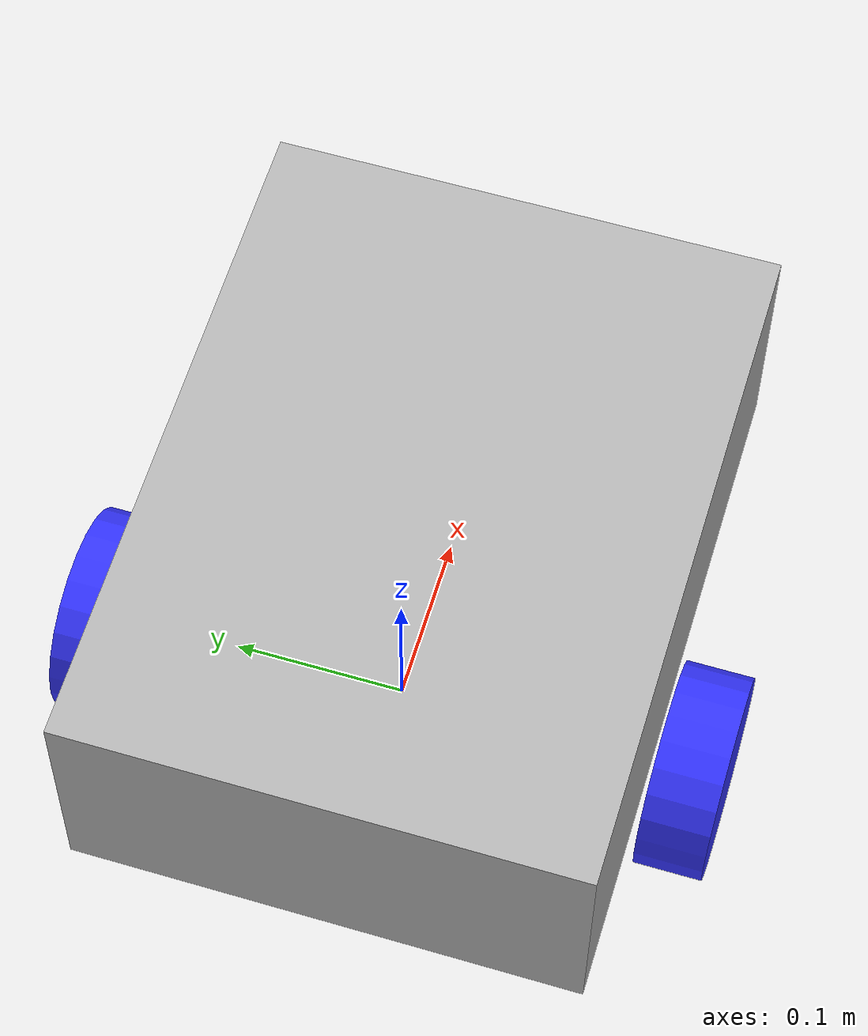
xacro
<?xml version="1.0"?>
<robot xmlns:xacro="http://www.ros.org/wiki/xacro">

    <!-- Include Inertial Macros -->
    <xacro:include filename="inertial_macros.xacro"/>

    <!-- Define Reusable Properties -->
    <xacro:property name="chassis_size" value="0.3 0.3 0.15"/>
    <xacro:property name="chassis_mass" value="0.5"/>

    <xacro:property name="wheel_radius" value="0.06"/>
    <xacro:property name="wheel_length" value="0.04"/>
    <xacro:property name="wheel_mass" value="0.1"/>

    <xacro:property name="caster_radius" value="0.05"/>
    <xacro:property name="caster_mass" value="0.1"/>

    <!-- Define Materials -->
    <material name="white">
        <color rgba="1 1 1 1"/>
    </material>
    <material name="orange">
        <color rgba="1 0.3 0.1 1"/>
    </material>
    <material name="blue">
        <color rgba="0.2 0.2 1 1"/>
    </material>
    <material name="black">
        <color rgba="0 0 0 1"/>
    </material>

    <!-- Base Link -->
    <link name="base_link">
    </link>

    <!-- Chassis -->
    <joint name="chassis_joint" type="fixed">
        <parent link="base_link"/>
        <child link="chassis"/>
        <origin xyz="-0.1 0 0"/>
    </joint>

    <xacro:property name="chassis_length" value="0.4"/>
    <xacro:property name="chassis_width" value="0.3"/>
    <xacro:property name="chassis_height" value="0.15"/>
    <xacro:property name="chassis_mass" value="2.0"/>

    <link name="chassis">
        <visual>
            <origin xyz="0.15 0 0.075"/>
            <geometry>
                <box size="${chassis_length} ${chassis_width} ${chassis_height}"/>
            </geometry>
            <material name="Metal">
                <color rgba="0.7 0.7 0.7 1.0"/>
            </material>
        </visual>

        <collision>
            <origin xyz="0.15 0 0.075"/>
            <geometry>
                <box size="${chassis_length} ${chassis_width} ${chassis_height}"/>
            </geometry>
        </collision>

        <inertial>
            <origin xyz="0.15 0 0.075"/>
            <mass value="${chassis_mass}"/>
            <inertia ixx="0.1" ixy="0.0" ixz="0.0" iyy="0.1" iyz="0.0" izz="0.1"/>
        </inertial>
    </link>

    <!-- Left Wheel -->
    <joint name="left_wheel_joint" type="continuous">
        <parent link="base_link"/>
        <child link="left_wheel"/>
        <origin xyz="0 0.175 0" rpy="-${pi/2} 0 0"/>
        <axis xyz="0 0 1"/>
    </joint>

    <link name="left_wheel">
        <visual>
            <geometry>
                <cylinder radius="${wheel_radius}" length="${wheel_length}"/>
            </geometry>
            <material name="blue"/>
        </visual>
        <collision>
            <geometry>
                <cylinder radius="${wheel_radius}" length="${wheel_length}"/>
            </geometry>
        </collision>
        <xacro:inertial_cylinder mass="${wheel_mass}" length="${wheel_length}" radius="${wheel_radius}">
            <origin xyz="0 0 0" rpy="0 0 0"/>
        </xacro:inertial_cylinder>
    </link>

    <!-- Right Wheel -->
    <joint name="right_wheel_joint" type="continuous">
        <parent link="base_link"/>
        <child link="right_wheel"/>
        <origin xyz="0 -0.175 0" rpy="${pi/2} 0 0"/>
        <axis xyz="0 0 -1"/>
    </joint>

    <link name="right_wheel">
        <visual>
            <geometry>
                <cylinder radius="${wheel_radius}" length="${wheel_length}"/>
            </geometry>
            <material name="blue"/>
        </visual>
        <collision>
            <geometry>
                <cylinder radius="${wheel_radius}" length="${wheel_length}"/>
            </geometry>
        </collision>
        <xacro:inertial_cylinder mass="${wheel_mass}" length="${wheel_length}" radius="${wheel_radius}">
            <origin xyz="0 0 0" rpy="0 0 0"/>
        </xacro:inertial_cylinder>
    </link>

    <!-- Caster Wheel -->
    <joint name="caster_wheel_joint" type="fixed">
        <parent link="chassis"/>
        <child link="caster_wheel"/>
        <origin xyz="0.24 0 0"/>
    </joint>

    <link name="caster_wheel">
        <visual>
            <geometry>
                <sphere radius="${caster_radius}"/>
            </geometry>
            <material name="black"/>
        </visual>
        <collision>
            <geometry>
                <sphere radius="${caster_radius}"/>
            </geometry>
        </collision>
        <xacro:inertial_sphere mass="${caster_mass}" radius="${caster_radius}">
            <origin xyz="0 0 0" rpy="0 0 0"/>
        </xacro:inertial_sphere>
    </link>

</robot>

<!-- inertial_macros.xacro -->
<robot xmlns:xacro="http://www.ros.org/wiki/xacro">

    <!-- Specify some standard inertial calculations https://en.wikipedia.org/wiki/List_of_moments_of_inertia -->
    <!-- These make use of xacro's mathematical functionality -->

    <xacro:macro name="inertial_sphere" params="mass radius *origin">
        <inertial>
            <xacro:insert_block name="origin"/>
            <mass value="${mass}"/>
            <inertia ixx="${(2/5) * mass * (radius*radius)}" ixy="0.0" ixz="0.0"
                     iyy="${(2/5) * mass * (radius*radius)}" iyz="0.0"
                     izz="${(2/5) * mass * (radius*radius)}"/>
        </inertial>
    </xacro:macro>

    <xacro:macro name="inertial_box" params="mass x y z *origin">
        <inertial>
            <xacro:insert_block name="origin"/>
            <mass value="${mass}"/>
            <inertia ixx="${(1/12) * mass * (y*y+z*z)}" ixy="0.0" ixz="0.0"
                     iyy="${(1/12) * mass * (x*x+z*z)}" iyz="0.0"
                     izz="${(1/12) * mass * (x*x+y*y)}"/>
        </inertial>
    </xacro:macro>

    <xacro:macro name="inertial_cylinder" params="mass length radius *origin">
        <inertial>
            <xacro:insert_block name="origin"/>
            <mass value="${mass}"/>
            <inertia ixx="${(1/12) * mass * (3*radius*radius + length*length)}" ixy="0.0" ixz="0.0"
                     iyy="${(1/12) * mass * (3*radius*radius + length*length)}" iyz="0.0"
                     izz="${(1/2) * mass * (radius*radius)}"/>
        </inertial>
    </xacro:macro>

</robot>
